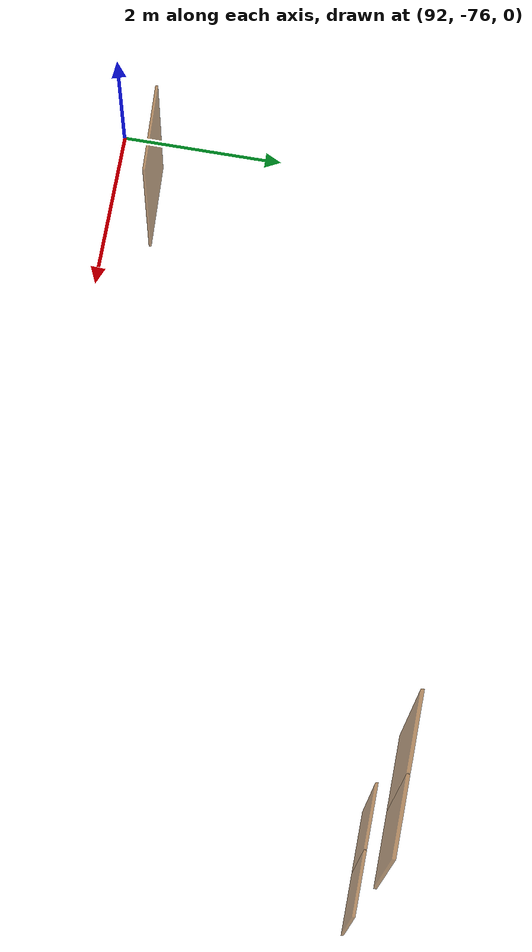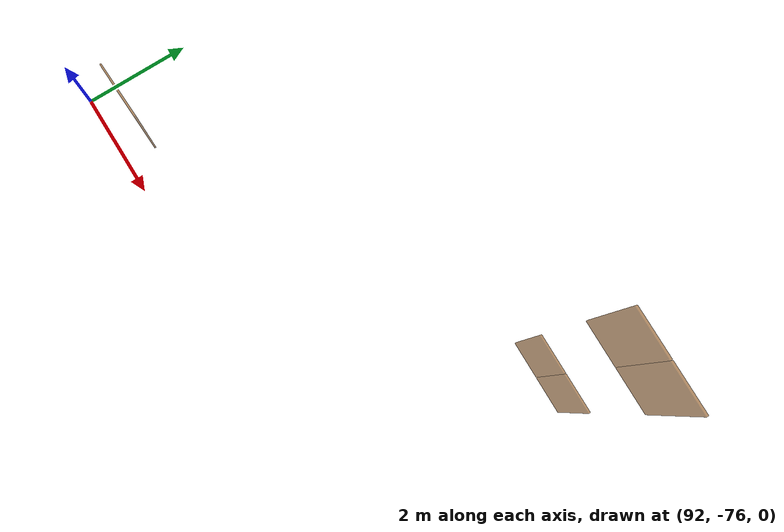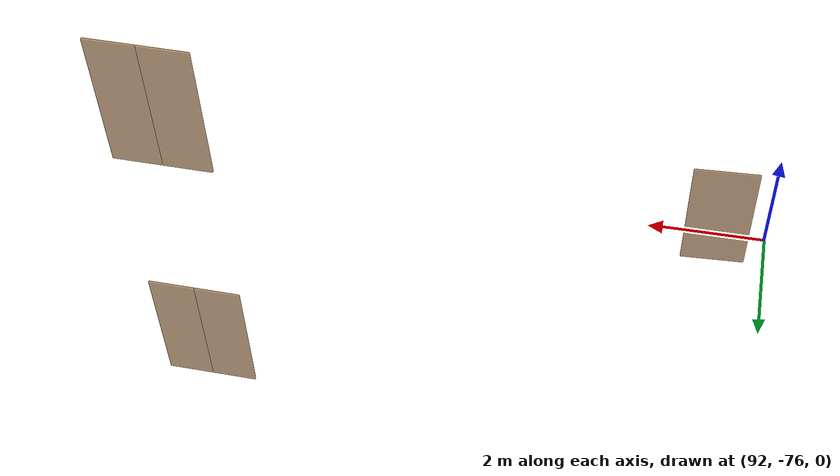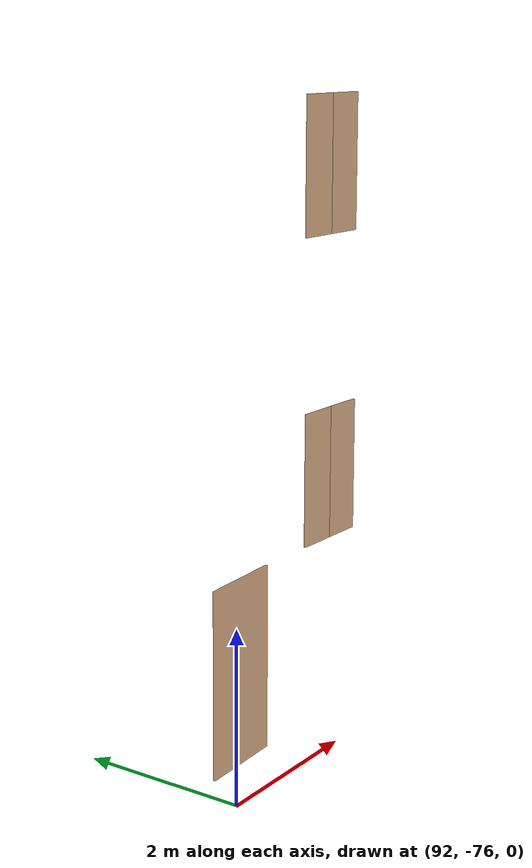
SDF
<sdf version="1.7">
 <world name="sim_world">
  <model name="nullA11">
   <pose>100.58516178164129 -71.74990582859695 0.0 0 0 -0.01869899603978867</pose>
   <link name="right">
    <pose>0.3555031019419688 0 1.11 0 0 0</pose>
    <visual name="right_visual">
     <geometry><box><size>0.7010062038839376 0.03 2.2</size></box></geometry>
     <material>
      <ambient>0.5 0.25 0 0.6</ambient>
      <diffuse>0.5 0.25 0 0.6</diffuse>
      <pbr><metal><metalness>0.0</metalness></metal></pbr>
     </material>
    </visual>
    <collision name="right_collision">
     <geometry><box><size>0.7010062038839376 0.03 2.2</size></box></geometry>
     <surface><contact><collide_bitmask>0x02</collide_bitmask></contact></surface>
    </collision>
    <inertial>
     <mass>50.0</mass>
     <inertia><ixx>20.17041666666667</ixx><iyy>22.214207074515706</iyy><izz>2.0512904078490366</izz></inertia>
    </inertial>
   </link>
   <joint name="right_joint" type="revolute">
    <parent>world</parent>
    <child>right</child>
    <axis><xyz>0 0 -1</xyz><limit><lower>0</lower><upper>1.57</upper></limit></axis>
    <pose>0.3555031019419688 0 0 0 0 0</pose>
   </joint>
   <link name="left">
    <pose>-0.3555031019419688 0 1.11 0 0 0</pose>
    <visual name="left_visual">
     <geometry><box><size>0.7010062038839376 0.03 2.2</size></box></geometry>
     <material>
      <ambient>0.5 0.25 0 0.6</ambient>
      <diffuse>0.5 0.25 0 0.6</diffuse>
      <pbr><metal><metalness>0.0</metalness></metal></pbr>
     </material>
    </visual>
    <collision name="left_collision">
     <geometry><box><size>0.7010062038839376 0.03 2.2</size></box></geometry>
     <surface><contact><collide_bitmask>0x02</collide_bitmask></contact></surface>
    </collision>
    <inertial>
     <mass>50.0</mass>
     <inertia><ixx>20.17041666666667</ixx><iyy>22.214207074515706</iyy><izz>2.0512904078490366</izz></inertia>
    </inertial>
   </link>
   <joint name="left_joint" type="revolute">
    <parent>world</parent>
    <child>left</child>
    <axis><xyz>0 0 -1</xyz><limit><lower>-1.57</lower><upper>0</upper></limit></axis>
    <pose>-0.3555031019419688 0 0 0 0 0</pose>
   </joint>
   <plugin name="register_component" filename="libregister_component.so">
    <component name="Door">
     <v_max_door>0.5</v_max_door>
     <a_max_door>0.3</a_max_door>
     <a_nom_door>0.15</a_nom_door>
     <dx_min_door>0.01</dx_min_door>
     <f_max_door>500.0</f_max_door>
     <ros_interface>true</ros_interface>
     <door name="nullA11" type="DoubleSwingDoor" left_joint_name="left_joint" right_joint_name="right_joint"/>
    </component>
   </plugin>
  </model>
  <model name="nullA12">
   <pose>92.86592555444116 -75.44146569337647 0.0 0 0 0.04253853199361168</pose>
   <link name="right">
    <pose>0 0 1.11 0 0 0</pose>
    <visual name="right_visual">
     <geometry><box><size>1.0742722173927646 0.03 2.2</size></box></geometry>
     <material>
      <ambient>0.5 0.25 0 0.6</ambient>
      <diffuse>0.5 0.25 0 0.6</diffuse>
      <pbr><metal><metalness>0.0</metalness></metal></pbr>
     </material>
    </visual>
    <collision name="right_collision">
     <geometry><box><size>1.0742722173927646 0.03 2.2</size></box></geometry>
     <surface><contact><collide_bitmask>0x02</collide_bitmask></contact></surface>
    </collision>
    <inertial>
     <mass>50.0</mass>
     <inertia><ixx>20.17041666666667</ixx><iyy>24.975253321091532</iyy><izz>4.812336654424863</izz></inertia>
    </inertial>
   </link>
   <joint name="right_joint" type="revolute">
    <parent>world</parent>
    <child>right</child>
    <axis><xyz>0 0 -1</xyz><limit><lower>0</lower><upper>1.57</upper></limit></axis>
    <pose>0.5421361086963823 0 0 0 0 0</pose>
   </joint>
   <plugin name="register_component" filename="libregister_component.so">
    <component name="Door">
     <v_max_door>0.5</v_max_door>
     <a_max_door>0.3</a_max_door>
     <a_nom_door>0.15</a_nom_door>
     <dx_min_door>0.01</dx_min_door>
     <f_max_door>500.0</f_max_door>
     <ros_interface>true</ros_interface>
     <door name="nullA12" type="SwingDoor" left_joint_name="empty_joint" right_joint_name="right_joint"/>
    </component>
   </plugin>
  </model>
  <model name="anullA11">
   <pose>100.58753028589607 -71.72293812774602 5.0 0 0 -0.01869813422094207</pose>
   <link name="right">
    <pose>0.3555046338404866 0 1.11 0 0 0</pose>
    <visual name="right_visual">
     <geometry><box><size>0.7010092676809732 0.03 2.2</size></box></geometry>
     <material>
      <ambient>0.5 0.25 0 0.6</ambient>
      <diffuse>0.5 0.25 0 0.6</diffuse>
      <pbr><metal><metalness>0.0</metalness></metal></pbr>
     </material>
    </visual>
    <collision name="right_collision">
     <geometry><box><size>0.7010092676809732 0.03 2.2</size></box></geometry>
     <surface><contact><collide_bitmask>0x02</collide_bitmask></contact></surface>
    </collision>
    <inertial>
     <mass>50.0</mass>
     <inertia><ixx>20.17041666666667</ixx><iyy>22.21422497239423</iyy><izz>2.05130830572756</izz></inertia>
    </inertial>
   </link>
   <joint name="right_joint" type="revolute">
    <parent>world</parent>
    <child>right</child>
    <axis><xyz>0 0 -1</xyz><limit><lower>0</lower><upper>1.57</upper></limit></axis>
    <pose>0.3555046338404866 0 0 0 0 0</pose>
   </joint>
   <link name="left">
    <pose>-0.3555046338404866 0 1.11 0 0 0</pose>
    <visual name="left_visual">
     <geometry><box><size>0.7010092676809732 0.03 2.2</size></box></geometry>
     <material>
      <ambient>0.5 0.25 0 0.6</ambient>
      <diffuse>0.5 0.25 0 0.6</diffuse>
      <pbr><metal><metalness>0.0</metalness></metal></pbr>
     </material>
    </visual>
    <collision name="left_collision">
     <geometry><box><size>0.7010092676809732 0.03 2.2</size></box></geometry>
     <surface><contact><collide_bitmask>0x02</collide_bitmask></contact></surface>
    </collision>
    <inertial>
     <mass>50.0</mass>
     <inertia><ixx>20.17041666666667</ixx><iyy>22.21422497239423</iyy><izz>2.05130830572756</izz></inertia>
    </inertial>
   </link>
   <joint name="left_joint" type="revolute">
    <parent>world</parent>
    <child>left</child>
    <axis><xyz>0 0 -1</xyz><limit><lower>-1.57</lower><upper>0</upper></limit></axis>
    <pose>-0.3555046338404866 0 0 0 0 0</pose>
   </joint>
   <plugin name="register_component" filename="libregister_component.so">
    <component name="Door">
     <v_max_door>0.5</v_max_door>
     <a_max_door>0.3</a_max_door>
     <a_nom_door>0.15</a_nom_door>
     <dx_min_door>0.01</dx_min_door>
     <f_max_door>500.0</f_max_door>
     <ros_interface>true</ros_interface>
     <door name="anullA11" type="DoubleSwingDoor" left_joint_name="left_joint" right_joint_name="right_joint"/>
    </component>
   </plugin>
  </model>
 </world>
</sdf>
